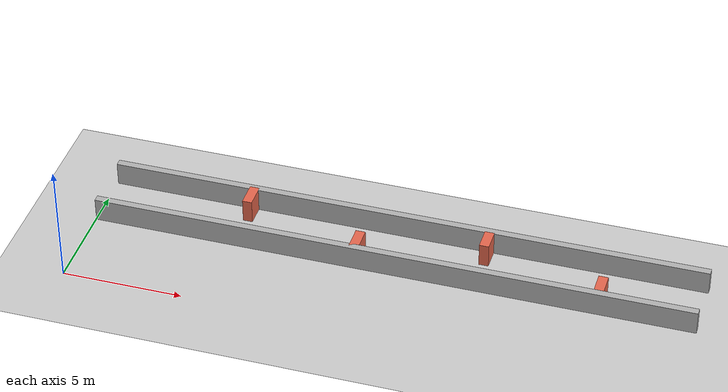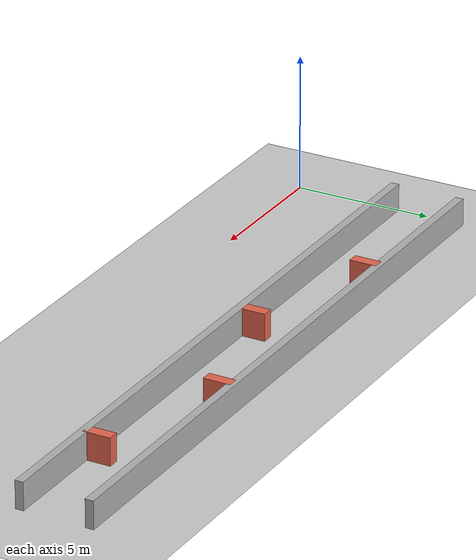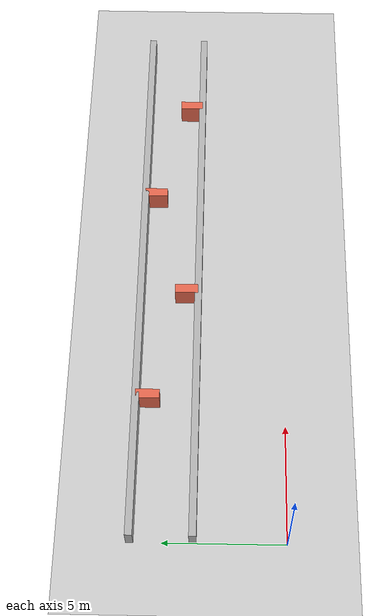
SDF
<sdf version="1.6">
 <world name="tb3_slalom">
  <physics type="ode"><max_step_size>0.001</max_step_size><real_time_factor>1</real_time_factor></physics>
  <include><uri>model://sun</uri></include>
  <include><uri>model://ground_plane</uri></include>
  <model name="top_wall">
   <static>true</static>
   <pose>12.5 6.25 0.5 0 0 0</pose>
   <link name="link">
    <collision name="c"><geometry><box><size>25 0.3 1</size></box></geometry></collision>
    <visual name="v">
     <geometry><box><size>25 0.3 1</size></box></geometry>
     <material><ambient>0.7 0.7 0.7 1</ambient></material>
    </visual>
   </link>
  </model>
  <model name="bottom_wall">
   <static>true</static>
   <pose>12.5 3.75 0.5 0 0 0</pose>
   <link name="link">
    <collision name="c"><geometry><box><size>25 0.3 1</size></box></geometry></collision>
    <visual name="v">
     <geometry><box><size>25 0.3 1</size></box></geometry>
     <material><ambient>0.7 0.7 0.7 1</ambient></material>
    </visual>
   </link>
  </model>
  <model name="obs1">
   <static>true</static>
   <pose>6 5.75 0.5 0 0 0</pose>
   <link name="link">
    <collision name="c"><geometry><box><size>0.4 1.0 1</size></box></geometry></collision>
    <visual name="v">
     <geometry><box><size>0.4 1.0 1</size></box></geometry>
     <material><ambient>0.9 0.4 0.3 1</ambient></material>
    </visual>
   </link>
  </model>
  <model name="obs2">
   <static>true</static>
   <pose>11 4.25 0.5 0 0 0</pose>
   <link name="link">
    <collision name="c"><geometry><box><size>0.4 1.0 1</size></box></geometry></collision>
    <visual name="v">
     <geometry><box><size>0.4 1.0 1</size></box></geometry>
     <material><ambient>0.9 0.4 0.3 1</ambient></material>
    </visual>
   </link>
  </model>
  <model name="obs3">
   <static>true</static>
   <pose>16 5.75 0.5 0 0 0</pose>
   <link name="link">
    <collision name="c"><geometry><box><size>0.4 1.0 1</size></box></geometry></collision>
    <visual name="v">
     <geometry><box><size>0.4 1.0 1</size></box></geometry>
     <material><ambient>0.9 0.4 0.3 1</ambient></material>
    </visual>
   </link>
  </model>
  <model name="obs4">
   <static>true</static>
   <pose>21 4.25 0.5 0 0 0</pose>
   <link name="link">
    <collision name="c"><geometry><box><size>0.4 1.0 1</size></box></geometry></collision>
    <visual name="v">
     <geometry><box><size>0.4 1.0 1</size></box></geometry>
     <material><ambient>0.9 0.4 0.3 1</ambient></material>
    </visual>
   </link>
  </model>
 </world>
</sdf>
